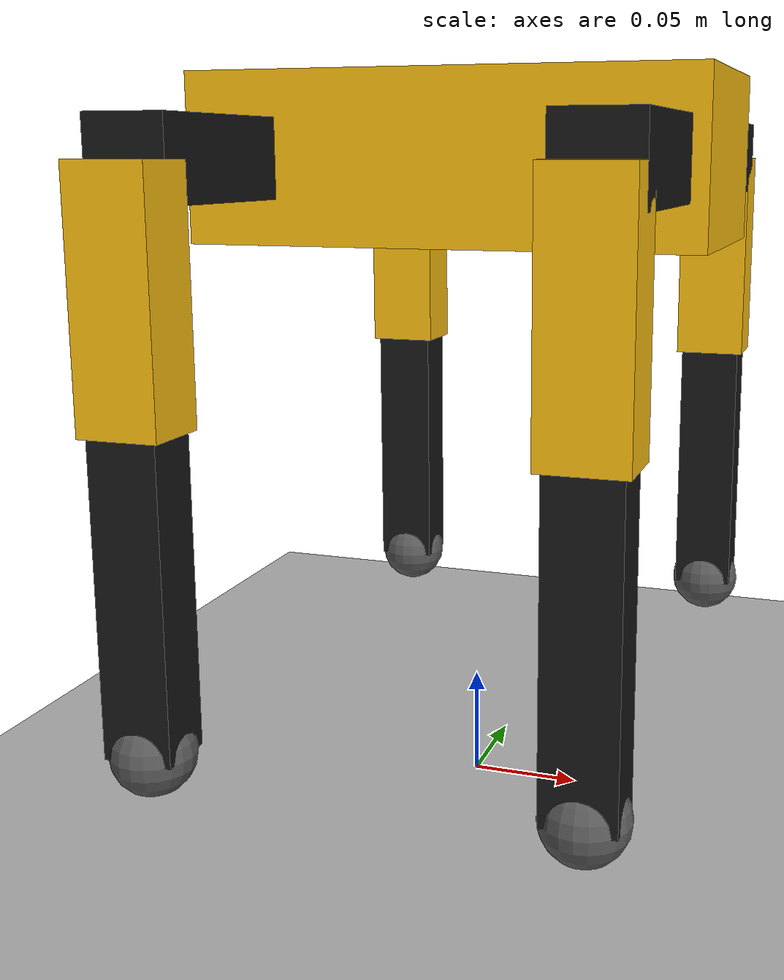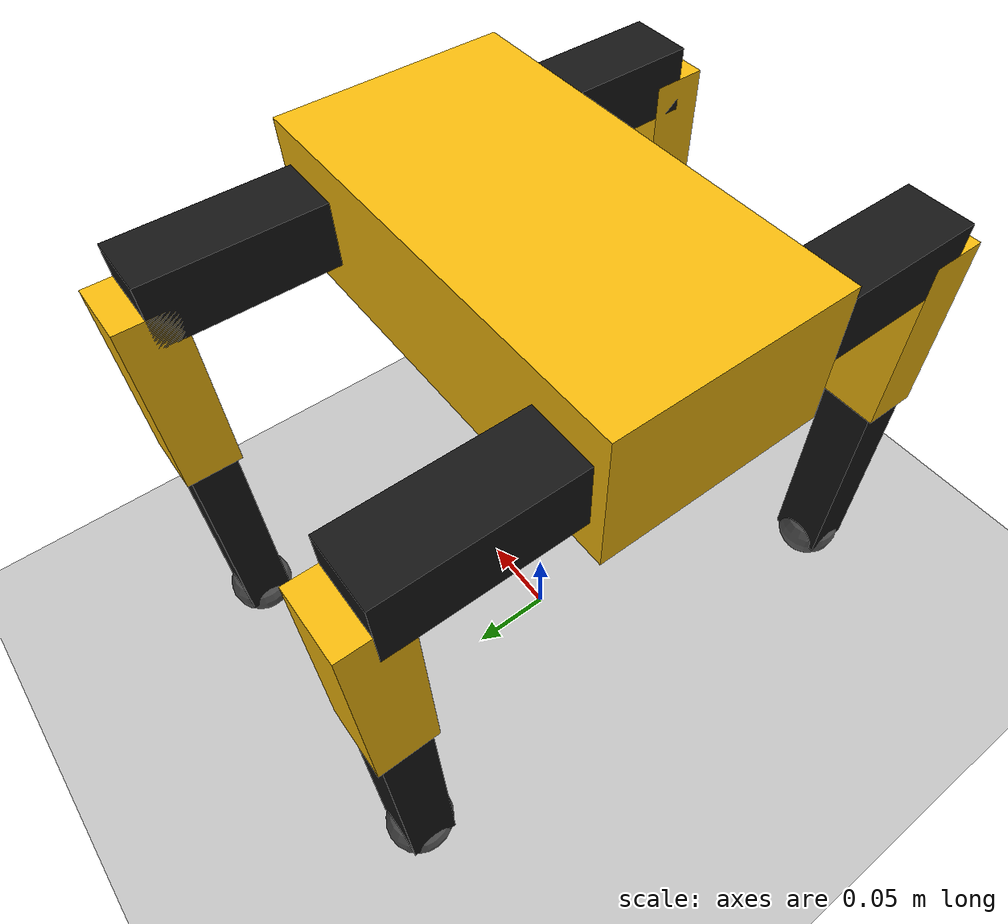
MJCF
<?xml version='1.0' encoding='utf-8'?>
<mujoco model="nova_sm3_provisional">
  <compiler angle="radian" inertiafromgeom="false" />
  <option timestep="0.002" gravity="0 0 -9.81" integrator="implicitfast" />
  <custom>
    <numeric name="backlash_rad" data="0.017453293" />
    <numeric name="command_delay_ms" data="20" />
    <numeric name="sensor_delay_ms" data="50" />
    <numeric name="voltage_v" data="5.5" />
    <numeric name="current_limit_per_servo_a" data="1.0" />
  </custom>
  <default>
    <joint damping="0.12" frictionloss="0.045" armature="0.002" />
    <geom contype="1" conaffinity="1" condim="3" friction="0.675 0.02 0.002" />
    <position kp="8" kv="0.8" ctrllimited="true" />
  </default>
  <visual>
    <global azimuth="135" elevation="-25" />
    <headlight ambient="0.4 0.4 0.4" />
  </visual>
  <asset>
    <material name="yellow" rgba="0.95 0.72 0.05 1" />
    <material name="black" rgba="0.08 0.08 0.08 1" />
    <material name="grey" rgba="0.35 0.35 0.35 1" />
  </asset>
  <worldbody>
    <light pos="0 0 2" dir="0 0 -1" />
    <geom name="floor" type="plane" size="2 2 0.05" rgba="0.75 0.75 0.75 1" />
    <body name="base_link" pos="0 0 0.30">
      <freejoint name="base_free_joint" />
      <inertial pos="0 0 0" mass="1.32" diaginertia="0.0025331625 0.0074034125 0.00851345" />
      <geom type="box" size="0.115 0.060 0.0375" material="yellow" mass="0" />
      <site name="imu_site" pos="0 0 0" size="0.005" rgba="0 0 1 0" />
      <body name="front_left_coxa_link" pos="0.09 0.06 0">
        <joint name="front_left_coxa_joint" axis="1 0 0" range="-0.60 0.60" />
        <inertial pos="0 0.045 0" mass="0.132" diaginertia="0.00011796125 3.09925e-05 0.00011796125" />
        <geom type="box" pos="0 0.045 0" size="0.0175 0.045 0.0175" material="black" mass="0" />
        <body name="front_left_femur_link" pos="0 0.09 0">
          <joint name="front_left_femur_joint" axis="0 1 0" range="-1.20 1.20" />
          <inertial pos="0 0 -0.0525" mass="0.132" diaginertia="0.00015085125 0.0001549625 2.688125e-05" />
          <geom type="box" pos="0 0 -0.0525" size="0.0175 0.015 0.0525" material="yellow" mass="0" />
          <body name="front_left_tibia_link" pos="0 0 -0.105">
            <joint name="front_left_tibia_joint" axis="0 1 0" range="-2.20 0.10" />
            <inertial pos="0 0 -0.080142857" mass="0.154" diaginertia="0.0003440980895 0.0003472869015 2.2602008e-05" />
            <geom type="box" pos="0 0 -0.066" size="0.015 0.0125 0.066" material="black" mass="0" />
            <geom name="front_left_foot" type="sphere" pos="0 0 -0.132" size="0.018" material="grey" mass="0.03" />
            <site name="front_left_foot_site" pos="0 0 -0.132" size="0.018" />
          </body>
        </body>
      </body>
      <body name="front_right_coxa_link" pos="0.09 -0.06 0">
        <joint name="front_right_coxa_joint" axis="-1 0 0" range="-0.60 0.60" />
        <inertial pos="0 -0.045 0" mass="0.132" diaginertia="0.00011796125 3.09925e-05 0.00011796125" />
        <geom type="box" pos="0 -0.045 0" size="0.0175 0.045 0.0175" material="black" mass="0" />
        <body name="front_right_femur_link" pos="0 -0.09 0">
          <joint name="front_right_femur_joint" axis="0 1 0" range="-1.20 1.20" />
          <inertial pos="0 0 -0.0525" mass="0.132" diaginertia="0.00015085125 0.0001549625 2.688125e-05" />
          <geom type="box" pos="0 0 -0.0525" size="0.0175 0.015 0.0525" material="yellow" mass="0" />
          <body name="front_right_tibia_link" pos="0 0 -0.105">
            <joint name="front_right_tibia_joint" axis="0 1 0" range="-2.20 0.10" />
            <inertial pos="0 0 -0.080142857" mass="0.154" diaginertia="0.0003440980895 0.0003472869015 2.2602008e-05" />
            <geom type="box" pos="0 0 -0.066" size="0.015 0.0125 0.066" material="black" mass="0" />
            <geom name="front_right_foot" type="sphere" pos="0 0 -0.132" size="0.018" material="grey" mass="0.03" />
            <site name="front_right_foot_site" pos="0 0 -0.132" size="0.018" />
          </body>
        </body>
      </body>
      <body name="rear_left_coxa_link" pos="-0.09 0.06 0">
        <joint name="rear_left_coxa_joint" axis="1 0 0" range="-0.60 0.60" />
        <inertial pos="0 0.045 0" mass="0.132" diaginertia="0.00011796125 3.09925e-05 0.00011796125" />
        <geom type="box" pos="0 0.045 0" size="0.0175 0.045 0.0175" material="black" mass="0" />
        <body name="rear_left_femur_link" pos="0 0.09 0">
          <joint name="rear_left_femur_joint" axis="0 1 0" range="-1.20 1.20" />
          <inertial pos="0 0 -0.0525" mass="0.132" diaginertia="0.00015085125 0.0001549625 2.688125e-05" />
          <geom type="box" pos="0 0 -0.0525" size="0.0175 0.015 0.0525" material="yellow" mass="0" />
          <body name="rear_left_tibia_link" pos="0 0 -0.105">
            <joint name="rear_left_tibia_joint" axis="0 1 0" range="-2.20 0.10" />
            <inertial pos="0 0 -0.080142857" mass="0.154" diaginertia="0.0003440980895 0.0003472869015 2.2602008e-05" />
            <geom type="box" pos="0 0 -0.066" size="0.015 0.0125 0.066" material="black" mass="0" />
            <geom name="rear_left_foot" type="sphere" pos="0 0 -0.132" size="0.018" material="grey" mass="0.03" />
            <site name="rear_left_foot_site" pos="0 0 -0.132" size="0.018" />
          </body>
        </body>
      </body>
      <body name="rear_right_coxa_link" pos="-0.09 -0.06 0">
        <joint name="rear_right_coxa_joint" axis="-1 0 0" range="-0.60 0.60" />
        <inertial pos="0 -0.045 0" mass="0.132" diaginertia="0.00011796125 3.09925e-05 0.00011796125" />
        <geom type="box" pos="0 -0.045 0" size="0.0175 0.045 0.0175" material="black" mass="0" />
        <body name="rear_right_femur_link" pos="0 -0.09 0">
          <joint name="rear_right_femur_joint" axis="0 1 0" range="-1.20 1.20" />
          <inertial pos="0 0 -0.0525" mass="0.132" diaginertia="0.00015085125 0.0001549625 2.688125e-05" />
          <geom type="box" pos="0 0 -0.0525" size="0.0175 0.015 0.0525" material="yellow" mass="0" />
          <body name="rear_right_tibia_link" pos="0 0 -0.105">
            <joint name="rear_right_tibia_joint" axis="0 1 0" range="-2.20 0.10" />
            <inertial pos="0 0 -0.080142857" mass="0.154" diaginertia="0.0003440980895 0.0003472869015 2.2602008e-05" />
            <geom type="box" pos="0 0 -0.066" size="0.015 0.0125 0.066" material="black" mass="0" />
            <geom name="rear_right_foot" type="sphere" pos="0 0 -0.132" size="0.018" material="grey" mass="0.03" />
            <site name="rear_right_foot_site" pos="0 0 -0.132" size="0.018" />
          </body>
        </body>
      </body>
    </body>
  </worldbody>
  <actuator>
    <position name="front_left_coxa_act" joint="front_left_coxa_joint" ctrlrange="-0.60 0.60" forcelimited="true" forcerange="-0.683807871274 0.683807871274" />
    <position name="front_left_femur_act" joint="front_left_femur_joint" ctrlrange="-1.20 1.20" forcelimited="true" forcerange="-0.683807871274 0.683807871274" />
    <position name="front_left_tibia_act" joint="front_left_tibia_joint" ctrlrange="-2.20 0.10" forcelimited="true" forcerange="-0.683807871274 0.683807871274" />
    <position name="front_right_coxa_act" joint="front_right_coxa_joint" ctrlrange="-0.60 0.60" forcelimited="true" forcerange="-0.683807871274 0.683807871274" />
    <position name="front_right_femur_act" joint="front_right_femur_joint" ctrlrange="-1.20 1.20" forcelimited="true" forcerange="-0.683807871274 0.683807871274" />
    <position name="front_right_tibia_act" joint="front_right_tibia_joint" ctrlrange="-2.20 0.10" forcelimited="true" forcerange="-0.683807871274 0.683807871274" />
    <position name="rear_left_coxa_act" joint="rear_left_coxa_joint" ctrlrange="-0.60 0.60" forcelimited="true" forcerange="-0.683807871274 0.683807871274" />
    <position name="rear_left_femur_act" joint="rear_left_femur_joint" ctrlrange="-1.20 1.20" forcelimited="true" forcerange="-0.683807871274 0.683807871274" />
    <position name="rear_left_tibia_act" joint="rear_left_tibia_joint" ctrlrange="-2.20 0.10" forcelimited="true" forcerange="-0.683807871274 0.683807871274" />
    <position name="rear_right_coxa_act" joint="rear_right_coxa_joint" ctrlrange="-0.60 0.60" forcelimited="true" forcerange="-0.683807871274 0.683807871274" />
    <position name="rear_right_femur_act" joint="rear_right_femur_joint" ctrlrange="-1.20 1.20" forcelimited="true" forcerange="-0.683807871274 0.683807871274" />
    <position name="rear_right_tibia_act" joint="rear_right_tibia_joint" ctrlrange="-2.20 0.10" forcelimited="true" forcerange="-0.683807871274 0.683807871274" />
  </actuator>
  <sensor>
    <framequat name="imu_orientation" objtype="body" objname="base_link" />
    <gyro name="imu_gyro" site="imu_site" />
    <accelerometer name="imu_accel" site="imu_site" />
    <touch name="front_left_contact" site="front_left_foot_site" />
    <touch name="front_right_contact" site="front_right_foot_site" />
    <touch name="rear_left_contact" site="rear_left_foot_site" />
    <touch name="rear_right_contact" site="rear_right_foot_site" />
  </sensor>
</mujoco>
